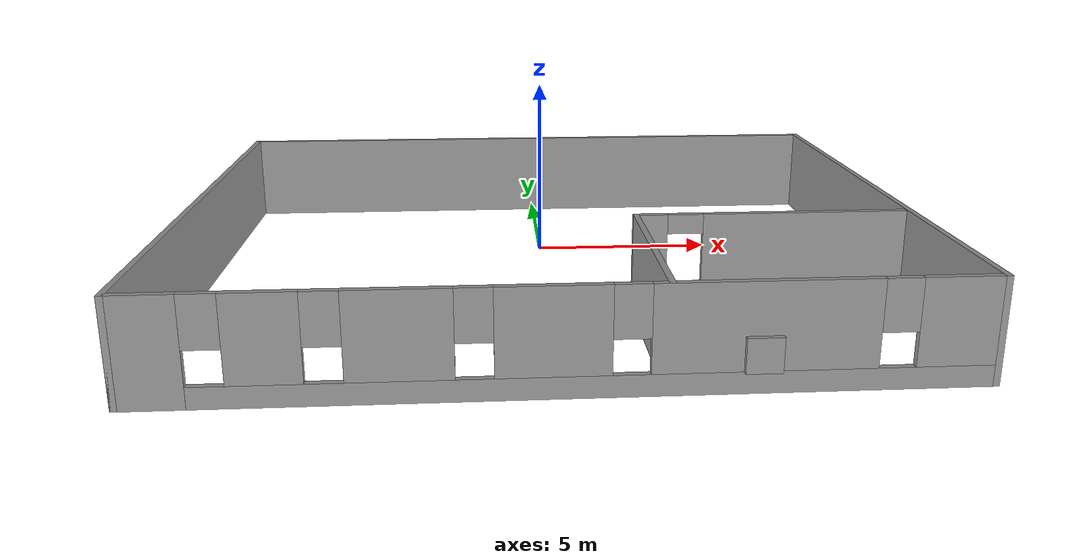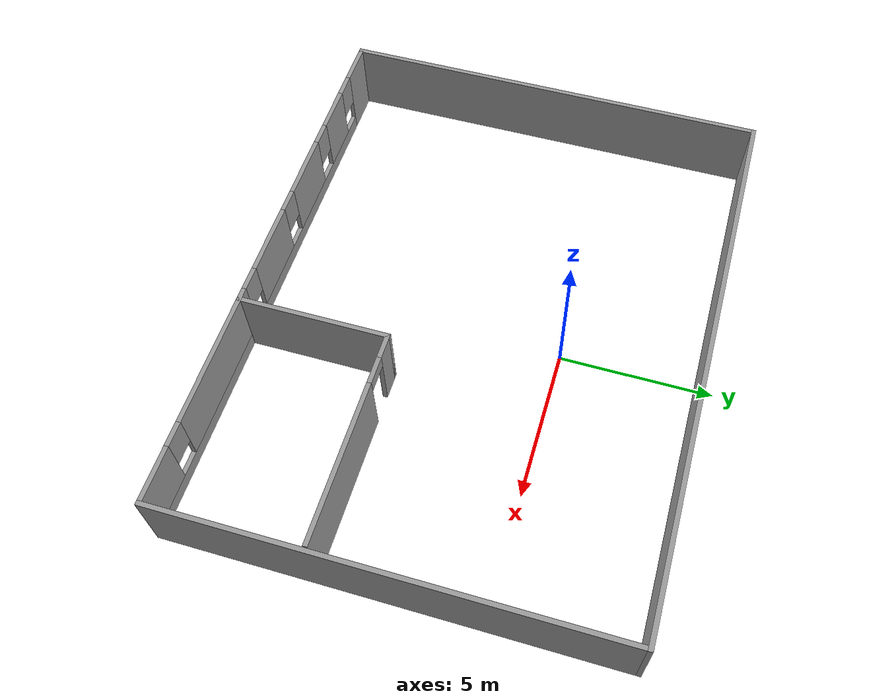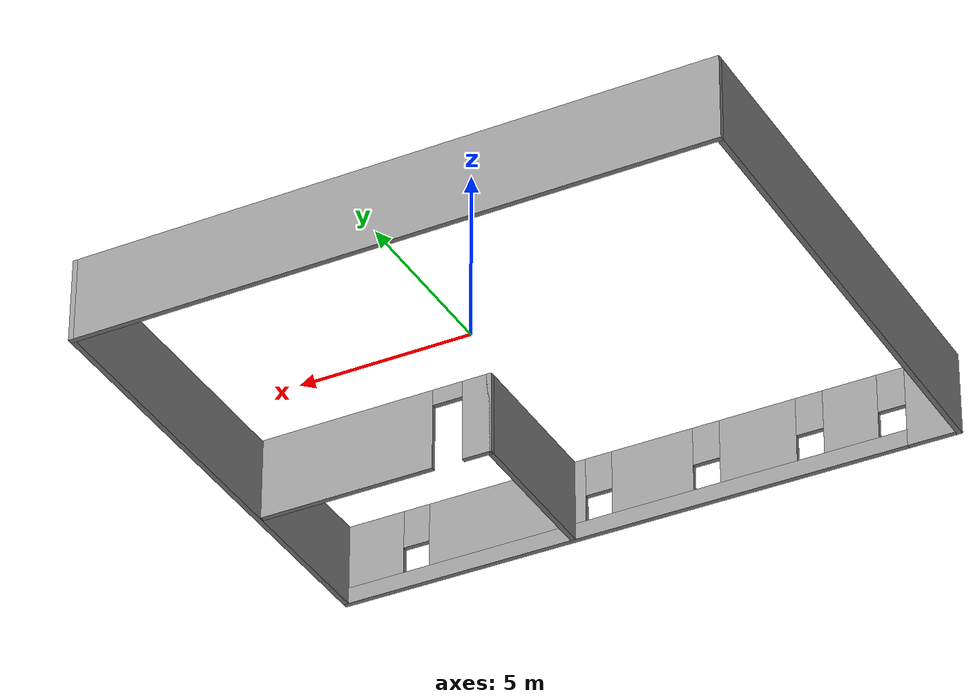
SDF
<?xml version='1.0'?>
<sdf version='1.7'>
  <model name='Lab'>
    <pose>-0.028485 -2.71038 0 0 -0 0</pose>
    <link name='Wall_10'>
      <collision name='Wall_10_Collision'>
        <geometry>
          <box>
            <size>14.5 0.15 2.5</size>
          </box>
        </geometry>
        <pose>0 0 1.25 0 -0 0</pose>
      </collision>
      <visual name='Wall_10_Visual'>
        <pose>0 0 1.25 0 -0 0</pose>
        <geometry>
          <box>
            <size>14.5 0.15 2.5</size>
          </box>
        </geometry>
        <material>
          <script>
            <uri>file://media/materials/scripts/gazebo.material</uri>
            <name>Gazebo/Grey</name>
          </script>
          <ambient>0.701961 0.701961 0.701961 1</ambient>
        </material>
        <meta>
          <layer>0</layer>
        </meta>
      </visual>
      <pose>9.175 -0 0 0 -0 1.5708</pose>
    </link>
    <link name='Wall_11'>
      <collision name='Wall_11_Collision'>
        <geometry>
          <box>
            <size>18.5 0.15 2.5</size>
          </box>
        </geometry>
        <pose>0 0 1.25 0 -0 0</pose>
      </collision>
      <visual name='Wall_11_Visual'>
        <pose>0 0 1.25 0 -0 0</pose>
        <geometry>
          <box>
            <size>18.5 0.15 2.5</size>
          </box>
        </geometry>
        <material>
          <script>
            <uri>file://media/materials/scripts/gazebo.material</uri>
            <name>Gazebo/Grey</name>
          </script>
          <ambient>0.701961 0.701961 0.701961 1</ambient>
        </material>
        <meta>
          <layer>0</layer>
        </meta>
      </visual>
      <pose>0 7.175 0 0 -0 3.14159</pose>
    </link>
    <link name='Wall_13'>
      <collision name='Wall_13_Collision'>
        <geometry>
          <box>
            <size>5 0.15 2.5</size>
          </box>
        </geometry>
        <pose>0 0 1.25 0 -0 0</pose>
      </collision>
      <visual name='Wall_13_Visual'>
        <pose>0 0 1.25 0 -0 0</pose>
        <geometry>
          <box>
            <size>5 0.15 2.5</size>
          </box>
        </geometry>
        <material>
          <script>
            <uri>file://media/materials/scripts/gazebo.material</uri>
            <name>Gazebo/Grey</name>
          </script>
          <ambient>0.701961 0.701961 0.701961 1</ambient>
        </material>
        <meta>
          <layer>0</layer>
        </meta>
      </visual>
      <pose>2.14737 -4.73989 0 0 -0 1.5708</pose>
    </link>
    <link name='Wall_14'>
      <pose>5.57236 -2.31489 0 0 -0 0</pose>
      <visual name='Wall_14_Visual_0'>
        <pose>-3.06474 0 1.25 0 -0 0</pose>
        <geometry>
          <box>
            <size>0.870529 0.15 2.5</size>
          </box>
        </geometry>
        <material>
          <script>
            <uri>file://media/materials/scripts/gazebo.material</uri>
            <name>Gazebo/Grey</name>
          </script>
          <ambient>0.701961 0.701961 0.701961 1</ambient>
        </material>
        <meta>
          <layer>0</layer>
        </meta>
      </visual>
      <collision name='Wall_14_Collision_0'>
        <geometry>
          <box>
            <size>0.870529 0.15 2.5</size>
          </box>
        </geometry>
        <pose>-3.06474 0 1.25 0 -0 0</pose>
      </collision>
      <visual name='Wall_14_Visual_1'>
        <pose>0.885265 0 1.25 0 -0 0</pose>
        <geometry>
          <box>
            <size>5.22947 0.15 2.5</size>
          </box>
        </geometry>
        <material>
          <script>
            <uri>file://media/materials/scripts/gazebo.material</uri>
            <name>Gazebo/Grey</name>
          </script>
          <ambient>0.701961 0.701961 0.701961 1</ambient>
        </material>
        <meta>
          <layer>0</layer>
        </meta>
      </visual>
      <collision name='Wall_14_Collision_1'>
        <geometry>
          <box>
            <size>5.22947 0.15 2.5</size>
          </box>
        </geometry>
        <pose>0.885265 0 1.25 0 -0 0</pose>
      </collision>
      <visual name='Wall_14_Visual_2'>
        <pose>-2.17947 0 2.25 0 -0 0</pose>
        <geometry>
          <box>
            <size>0.9 0.15 0.5</size>
          </box>
        </geometry>
        <material>
          <script>
            <uri>file://media/materials/scripts/gazebo.material</uri>
            <name>Gazebo/Grey</name>
          </script>
          <ambient>0.701961 0.701961 0.701961 1</ambient>
        </material>
        <meta>
          <layer>0</layer>
        </meta>
      </visual>
      <collision name='Wall_14_Collision_2'>
        <geometry>
          <box>
            <size>0.9 0.15 0.5</size>
          </box>
        </geometry>
        <pose>-2.17947 0 2.25 0 -0 0</pose>
      </collision>
    </link>
    <link name='Wall_7'>
      <collision name='Wall_7_Collision'>
        <geometry>
          <box>
            <size>14.5 0.15 2.5</size>
          </box>
        </geometry>
        <pose>0 0 1.25 0 -0 0</pose>
      </collision>
      <visual name='Wall_7_Visual'>
        <pose>0 0 1.25 0 -0 0</pose>
        <geometry>
          <box>
            <size>14.5 0.15 2.5</size>
          </box>
        </geometry>
        <material>
          <script>
            <uri>file://media/materials/scripts/gazebo.material</uri>
            <name>Gazebo/Grey</name>
          </script>
          <ambient>0.701961 0.701961 0.701961 1</ambient>
        </material>
        <meta>
          <layer>0</layer>
        </meta>
      </visual>
      <pose>-9.175 -0 0 0 -0 -1.5708</pose>
    </link>
    <link name='Wall_9'>
      <pose>0 -7.175 0 0 -0 0</pose>
      <visual name='Wall_9_Visual_0'>
        <pose>-8.4928 0 1.25 0 -0 0</pose>
        <geometry>
          <box>
            <size>1.51439 0.15 2.5</size>
          </box>
        </geometry>
        <material>
          <script>
            <uri>file://media/materials/scripts/gazebo.material</uri>
            <name>Gazebo/Grey</name>
          </script>
          <ambient>0.701961 0.701961 0.701961 1</ambient>
        </material>
        <meta>
          <layer>0</layer>
        </meta>
      </visual>
      <collision name='Wall_9_Collision_0'>
        <geometry>
          <box>
            <size>1.51439 0.15 2.5</size>
          </box>
        </geometry>
        <pose>-8.4928 0 1.25 0 -0 0</pose>
      </collision>
      <visual name='Wall_9_Visual_1'>
        <pose>0.757197 0 0.25 0 -0 0</pose>
        <geometry>
          <box>
            <size>16.9856 0.15 0.5</size>
          </box>
        </geometry>
        <material>
          <script>
            <uri>file://media/materials/scripts/gazebo.material</uri>
            <name>Gazebo/Grey</name>
          </script>
          <ambient>0.701961 0.701961 0.701961 1</ambient>
        </material>
        <meta>
          <layer>0</layer>
        </meta>
      </visual>
      <collision name='Wall_9_Collision_1'>
        <geometry>
          <box>
            <size>16.9856 0.15 0.5</size>
          </box>
        </geometry>
        <pose>0.757197 0 0.25 0 -0 0</pose>
      </collision>
      <visual name='Wall_9_Visual_2'>
        <pose>-6.14259 0 1.5 0 -0 0</pose>
        <geometry>
          <box>
            <size>1.58604 0.15 2</size>
          </box>
        </geometry>
        <material>
          <script>
            <uri>file://media/materials/scripts/gazebo.material</uri>
            <name>Gazebo/Grey</name>
          </script>
          <ambient>0.701961 0.701961 0.701961 1</ambient>
        </material>
        <meta>
          <layer>0</layer>
        </meta>
      </visual>
      <collision name='Wall_9_Collision_2'>
        <geometry>
          <box>
            <size>1.58604 0.15 2</size>
          </box>
        </geometry>
        <pose>-6.14259 0 1.5 0 -0 0</pose>
      </collision>
      <visual name='Wall_9_Visual_3'>
        <pose>-3.42006 0 1.5 0 -0 0</pose>
        <geometry>
          <box>
            <size>2.25902 0.15 2</size>
          </box>
        </geometry>
        <material>
          <script>
            <uri>file://media/materials/scripts/gazebo.material</uri>
            <name>Gazebo/Grey</name>
          </script>
          <ambient>0.701961 0.701961 0.701961 1</ambient>
        </material>
        <meta>
          <layer>0</layer>
        </meta>
      </visual>
      <collision name='Wall_9_Collision_3'>
        <geometry>
          <box>
            <size>2.25902 0.15 2</size>
          </box>
        </geometry>
        <pose>-3.42006 0 1.5 0 -0 0</pose>
      </collision>
      <visual name='Wall_9_Visual_4'>
        <pose>-0.269264 0 1.5 0 -0 0</pose>
        <geometry>
          <box>
            <size>2.44256 0.15 2</size>
          </box>
        </geometry>
        <material>
          <script>
            <uri>file://media/materials/scripts/gazebo.material</uri>
            <name>Gazebo/Grey</name>
          </script>
          <ambient>0.701961 0.701961 0.701961 1</ambient>
        </material>
        <meta>
          <layer>0</layer>
        </meta>
      </visual>
      <collision name='Wall_9_Collision_4'>
        <geometry>
          <box>
            <size>2.44256 0.15 2</size>
          </box>
        </geometry>
        <pose>-0.269264 0 1.5 0 -0 0</pose>
      </collision>
      <visual name='Wall_9_Visual_5'>
        <pose>4.16632 0 1.5 0 -0 0</pose>
        <geometry>
          <box>
            <size>4.8286 0.15 2</size>
          </box>
        </geometry>
        <material>
          <script>
            <uri>file://media/materials/scripts/gazebo.material</uri>
            <name>Gazebo/Grey</name>
          </script>
          <ambient>0.701961 0.701961 0.701961 1</ambient>
        </material>
        <meta>
          <layer>0</layer>
        </meta>
      </visual>
      <collision name='Wall_9_Collision_5'>
        <geometry>
          <box>
            <size>4.8286 0.15 2</size>
          </box>
        </geometry>
        <pose>4.16632 0 1.5 0 -0 0</pose>
      </collision>
      <visual name='Wall_9_Visual_6'>
        <pose>8.31531 0 1.5 0 -0 0</pose>
        <geometry>
          <box>
            <size>1.86938 0.15 2</size>
          </box>
        </geometry>
        <material>
          <script>
            <uri>file://media/materials/scripts/gazebo.material</uri>
            <name>Gazebo/Grey</name>
          </script>
          <ambient>0.701961 0.701961 0.701961 1</ambient>
        </material>
        <meta>
          <layer>0</layer>
        </meta>
      </visual>
      <collision name='Wall_9_Collision_6'>
        <geometry>
          <box>
            <size>1.86938 0.15 2</size>
          </box>
        </geometry>
        <pose>8.31531 0 1.5 0 -0 0</pose>
      </collision>
      <visual name='Wall_9_Visual_7'>
        <pose>-7.33561 0 1.9 0 -0 0</pose>
        <geometry>
          <box>
            <size>0.8 0.15 1.2</size>
          </box>
        </geometry>
        <material>
          <script>
            <uri>file://media/materials/scripts/gazebo.material</uri>
            <name>Gazebo/Grey</name>
          </script>
          <ambient>0.701961 0.701961 0.701961 1</ambient>
        </material>
        <meta>
          <layer>0</layer>
        </meta>
      </visual>
      <collision name='Wall_9_Collision_7'>
        <geometry>
          <box>
            <size>0.8 0.15 1.2</size>
          </box>
        </geometry>
        <pose>-7.33561 0 1.9 0 -0 0</pose>
      </collision>
      <visual name='Wall_9_Visual_8'>
        <pose>-4.94957 0 1.9 0 -0 0</pose>
        <geometry>
          <box>
            <size>0.8 0.15 1.2</size>
          </box>
        </geometry>
        <material>
          <script>
            <uri>file://media/materials/scripts/gazebo.material</uri>
            <name>Gazebo/Grey</name>
          </script>
          <ambient>0.701961 0.701961 0.701961 1</ambient>
        </material>
        <meta>
          <layer>0</layer>
        </meta>
      </visual>
      <collision name='Wall_9_Collision_8'>
        <geometry>
          <box>
            <size>0.8 0.15 1.2</size>
          </box>
        </geometry>
        <pose>-4.94957 0 1.9 0 -0 0</pose>
      </collision>
      <visual name='Wall_9_Visual_9'>
        <pose>-1.89055 0 1.9 0 -0 0</pose>
        <geometry>
          <box>
            <size>0.8 0.15 1.2</size>
          </box>
        </geometry>
        <material>
          <script>
            <uri>file://media/materials/scripts/gazebo.material</uri>
            <name>Gazebo/Grey</name>
          </script>
          <ambient>0.701961 0.701961 0.701961 1</ambient>
        </material>
        <meta>
          <layer>0</layer>
        </meta>
      </visual>
      <collision name='Wall_9_Collision_9'>
        <geometry>
          <box>
            <size>0.8 0.15 1.2</size>
          </box>
        </geometry>
        <pose>-1.89055 0 1.9 0 -0 0</pose>
      </collision>
      <visual name='Wall_9_Visual_10'>
        <pose>1.35202 0 1.9 0 -0 0</pose>
        <geometry>
          <box>
            <size>0.8 0.15 1.2</size>
          </box>
        </geometry>
        <material>
          <script>
            <uri>file://media/materials/scripts/gazebo.material</uri>
            <name>Gazebo/Grey</name>
          </script>
          <ambient>0.701961 0.701961 0.701961 1</ambient>
        </material>
        <meta>
          <layer>0</layer>
        </meta>
      </visual>
      <collision name='Wall_9_Collision_10'>
        <geometry>
          <box>
            <size>0.8 0.15 1.2</size>
          </box>
        </geometry>
        <pose>1.35202 0 1.9 0 -0 0</pose>
      </collision>
      <visual name='Wall_9_Visual_11'>
        <pose>6.98062 0 1.9 0 -0 0</pose>
        <geometry>
          <box>
            <size>0.8 0.15 1.2</size>
          </box>
        </geometry>
        <material>
          <script>
            <uri>file://media/materials/scripts/gazebo.material</uri>
            <name>Gazebo/Grey</name>
          </script>
          <ambient>0.701961 0.701961 0.701961 1</ambient>
        </material>
        <meta>
          <layer>0</layer>
        </meta>
      </visual>
      <collision name='Wall_9_Collision_11'>
        <geometry>
          <box>
            <size>0.8 0.15 1.2</size>
          </box>
        </geometry>
        <pose>6.98062 0 1.9 0 -0 0</pose>
      </collision>
    </link>
    <link name='Window_5'>
      <collision name='Window_5_Collision'>
        <geometry>
          <box>
            <size>0.8 0.17 0.8</size>
          </box>
        </geometry>
        <pose>0 0 0.4 0 -0 0</pose>
      </collision>
      <visual name='Window_5_Visual'>
        <pose>0 0 0.4 0 -0 0</pose>
        <geometry>
          <box>
            <size>0.8 0.17 0.8</size>
          </box>
        </geometry>
        <material>
          <script>
            <uri>file://media/materials/scripts/gazebo.material</uri>
            <name>Gazebo/Grey</name>
          </script>
        </material>
      </visual>
      <pose>4.10514 -7.28725 0.5 0 -0 0</pose>
    </link>
    <static>1</static>
  </model>
</sdf>
